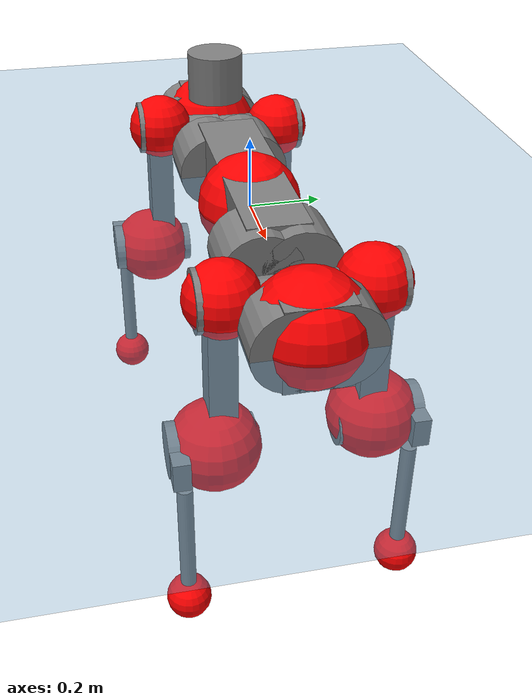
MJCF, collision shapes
<mujoco model="anymal_c">
  <compiler angle="radian" assetdir="assets" balanceinertia="true" inertiafromgeom="false"/>

  <option timestep="0.005" density="1.2" viscosity="2e-05"/>

  <size nkey="1"/>

  <visual>
    <quality shadowsize="8192"/>
    <map shadowclip="0.5"/>
  </visual>

  <default>
    <default class="/">
      <material specular="0" shininess="0.25"/>
      <geom contype="0" conaffinity="0" group="1" solref="-1000 -80"/>
      <site size="0.01 0.005 0.005" group="5"/>
      <general forcelimited="true" forcerange="-80 80" biastype="affine" gainprm="80" biasprm="0 -80 -2"/>
      <default class="anymal_c">
        <joint armature="0.01" damping="0.01" frictionloss="0.1"/>
        <default class="visual">
          <geom type="mesh" group="2"/>
          <default class="visual_zflip"/>
        </default>
        <default class="collision">
          <geom type="cylinder" group="3"/>
          <default class="foot">
            <geom size="0.03 0 0" type="sphere" condim="6" priority="1" friction="0.8 0.02 0.01" solimp="0.015 1 0.03"/>
          </default>
        </default>
      </default>
      <default class="reward_collision_sphere">
        <geom group="5" rgba="1 0 0 1"/>
      </default>
    </default>
  </default>

  <asset>
    <texture type="skybox" colorspace="auto" name="//unnamed_texture_0" builtin="gradient" rgb1="0.95 0.95 0.95" rgb2="0.95 0.95 0.95" width="100" height="600"/>
    <texture type="2d" colorspace="auto" name="texplane" builtin="checker" rgb1="0.345 0.575 0.748" rgb2="0.345 0.575 0.748" markrgb="1 1 1" width="512" height="512"/>
    <texture type="2d" colorspace="linear" name="base" file="base.png"/>
    <texture type="2d" colorspace="linear" name="top_shell" file="top_shell.png"/>
    <texture type="2d" colorspace="linear" name="bottom_shell" file="bottom_shell.png"/>
    <texture type="2d" colorspace="linear" name="remote" file="remote.png"/>
    <texture type="2d" colorspace="linear" name="hatch" file="hatch.png"/>
    <texture type="2d" colorspace="linear" name="handle" file="handle.png"/>
    <texture type="2d" colorspace="linear" name="face" file="face.png"/>
    <texture type="2d" colorspace="linear" name="battery" file="battery.png"/>
    <texture type="2d" colorspace="linear" name="lidar_cage" file="lidar_cage.png"/>
    <texture type="2d" colorspace="linear" name="depth_camera" file="depth_camera.png"/>
    <texture type="2d" colorspace="linear" name="wide_angle_camera" file="wide_angle_camera.png"/>
    <texture type="2d" colorspace="linear" name="lidar" file="lidar.png"/>
    <texture type="2d" colorspace="linear" name="drive" file="drive.png"/>
    <texture type="2d" colorspace="linear" name="hip_l" file="hip_l.png"/>
    <texture type="2d" colorspace="linear" name="shank_l" file="shank_l.png"/>
    <texture type="2d" colorspace="linear" name="foot" file="foot.png"/>
    <texture type="2d" colorspace="linear" name="thigh" file="thigh.png"/>
    <texture type="2d" colorspace="linear" name="shank_r" file="shank_r.png"/>
    <texture type="2d" colorspace="linear" name="hip_r" file="hip_r.png"/>
    <material name="MatPlane" class="/" texture="texplane" texuniform="true" texrepeat="2 2" specular="0.9" shininess="0.5"/>
    <material name="black_plastic" class="/" rgba="0.007 0.007 0.007 1"/>
    <material name="green" class="/" rgba="0.052 0.178 0.033 1"/>
    <material name="red" class="/" rgba="0.178 0.006 0.005 1"/>
    <material name="yellow" class="/" rgba="0.178 0.119 0.006 1"/>
    <material name="lwl" class="/" rgba="0.8 0.8 0.8 1"/>
    <material name="base" class="/" texture="base"/>
    <material name="top_shell" class="/" texture="top_shell"/>
    <material name="bottom_shell" class="/" texture="bottom_shell"/>
    <material name="hip_l" class="/" texture="hip_l"/>
    <material name="thigh" class="/" texture="thigh"/>
    <material name="shank_l" class="/" texture="shank_l"/>
    <material name="foot" class="/" texture="foot"/>
    <material name="hip_r" class="/" texture="hip_r"/>
    <material name="shank" class="/" texture="shank_r"/>
    <material name="hatch" class="/" texture="hatch"/>
    <material name="remote" class="/" texture="remote"/>
    <material name="handle" class="/" texture="handle"/>
    <material name="face" class="/" texture="face"/>
    <material name="depth_camera" class="/" texture="depth_camera"/>
    <material name="wide_angle_camera" class="/" texture="wide_angle_camera"/>
    <material name="battery" class="/" texture="battery"/>
    <material name="lidar_cage" class="/" texture="lidar_cage"/>
    <material name="lidar" class="/" texture="lidar"/>
    <material name="drive" class="/" texture="drive"/>
    <mesh name="base_0" class="/" file="base_0.obj"/>
    <mesh name="base_1" class="/" file="base_1.obj"/>
    <mesh name="base_2" class="/" file="base_2.obj"/>
    <mesh name="base_3" class="/" file="base_3.obj"/>
    <mesh name="base_4" class="/" file="base_4.obj"/>
    <mesh name="base_5" class="/" file="base_5.obj"/>
    <mesh name="top_shell" class="/" file="top_shell.obj"/>
    <mesh name="bottom_shell" class="/" file="bottom_shell.obj"/>
    <mesh name="remote" class="/" file="remote.obj"/>
    <mesh name="handle" class="/" file="handle.obj"/>
    <mesh name="face" class="/" file="face.obj"/>
    <mesh name="wide_angle_camera" class="/" file="wide_angle_camera.obj"/>
    <mesh name="depth_camera" class="/" file="depth_camera.obj"/>
    <mesh name="battery" class="/" file="battery.obj"/>
    <mesh name="lidar_cage" class="/" file="lidar_cage.obj"/>
    <mesh name="lidar" class="/" file="lidar.obj"/>
    <mesh name="drive" class="/" file="drive.obj"/>
    <mesh name="hip_l" class="/" file="hip_l.obj"/>
    <mesh name="thigh" class="/" file="thigh.obj"/>
    <mesh name="shank_l" class="/" file="shank_l.obj"/>
    <mesh name="foot" class="/" file="foot.obj"/>
    <mesh name="hip_r" class="/" file="hip_r.obj"/>
    <mesh name="hatch" class="/" file="hatch.obj"/>
    <mesh name="shank_r" class="/" file="shank_r.obj"/>
  </asset>

  <worldbody>
    <geom name="floor" class="/" size="100 100 0.125" type="plane" group="0" material="MatPlane"/>
    <light name="toplight_shadow" class="/" pos="0 0 5" dir="0.0990148 0.0990148 -0.990148" type="directional" ambient="0.04 0.04 0.04" diffuse="0.55 0.55 0.55" specular="0.12 0.12 0.12"/>
    <light name="toplight_fill" class="/" pos="0 0 5" dir="0.0990148 0.0990148 -0.990148" type="directional" castshadow="false" ambient="0.04 0.04 0.04" diffuse="0.3 0.3 0.3" specular="0.08 0.08 0.08"/>
    <body name="trunk" childclass="anymal_c" pos="0.000799335 -0.000754185 0.00707921" quat="1 -0.000233234 2.17973e-05 -5.35414e-05">
      <inertial pos="0.0117355 0.00981024 0.070277" quat="0.506237 0.506692 0.497902 0.488959" mass="34.3742" diaginertia="3.10979 0.122789 1.32511"/>
      <joint name="//unnamed_joint_0" type="free" armature="0" damping="0" frictionloss="0"/>
      <geom name="//unnamed_geom_1" class="visual" material="green" mesh="base_0"/>
      <geom name="//unnamed_geom_2" class="visual" material="yellow" mesh="base_1"/>
      <geom name="//unnamed_geom_3" class="visual" material="red" mesh="base_2"/>
      <geom name="//unnamed_geom_4" class="visual" material="black_plastic" mesh="base_3"/>
      <geom name="//unnamed_geom_5" class="visual" material="lwl" mesh="base_4"/>
      <geom name="//unnamed_geom_6" class="visual" material="base" mesh="base_5"/>
      <geom name="trunk_1" class="collision" size="0.353117 0.0852351 0.109588" type="box"/>
      <geom name="trunk_2" class="collision" size="0.109588 0.0882792" pos="0.310633 0.0520427 0" quat="0.707107 0 0.707107 0"/>
      <geom name="trunk_3" class="collision" size="0.109588 0.0882792" pos="-0.310633 0.0520427 0" quat="0.707107 0 0.707107 0"/>
      <geom name="trunk_4" class="collision" size="0.109588 0.0882792" pos="0.310633 -0.0520427 0" quat="0.707107 0 0.707107 0"/>
      <geom name="trunk_5" class="collision" size="0.109588 0.0882792" pos="-0.310633 -0.0520427 0" quat="0.707107 0 0.707107 0"/>
      <geom name="//unnamed_geom_12" class="visual" material="top_shell" mesh="top_shell"/>
      <geom name="//unnamed_geom_13" class="visual" material="bottom_shell" mesh="bottom_shell"/>
      <geom name="//unnamed_geom_14" class="visual" material="remote" mesh="remote"/>
      <geom name="//unnamed_geom_15" class="visual" material="handle" mesh="handle"/>
      <geom name="//unnamed_geom_16" class="visual" pos="0.591989 0 0" quat="1 0 0 0" material="face" mesh="face"/>
      <geom name="trunk_6" class="collision" size="0.0669704 0.0852351 0.109588" pos="0.67054 0 0" type="box"/>
      <geom name="//unnamed_geom_18" class="collision" size="0.109588 0.0669704" pos="0.67054 0.0520427 0" quat="0.707107 0 0.707107 0"/>
      <geom name="//unnamed_geom_19" class="collision" size="0.109588 0.0669704" pos="0.67054 -0.0520427 0" quat="0.707107 0 0.707107 0"/>
      <geom name="//unnamed_geom_20" class="visual" pos="0.65933 0 -0.0436562" quat="0.965926 0 0.258819 0" material="depth_camera" mesh="depth_camera"/>
      <geom name="//unnamed_geom_21" class="visual" pos="0.732666 0 0.0221745" material="wide_angle_camera" mesh="wide_angle_camera"/>
      <geom name="//unnamed_geom_22" class="visual_zflip" pos="-0.591989 0 0" quat="0 0 0 1" material="face" mesh="face"/>
      <geom name="trunk_7" class="collision" size="0.0669704 0.0852351 0.109588" pos="-0.67054 0 0" quat="0 0 0 1" type="box"/>
      <geom name="//unnamed_geom_24" class="collision" size="0.109588 0.0669704" pos="-0.67054 -0.0520427 0" quat="0 -0.707107 0 0.707107"/>
      <geom name="//unnamed_geom_25" class="collision" size="0.109588 0.0669704" pos="-0.67054 0.0520427 0" quat="0 -0.707107 0 0.707107"/>
      <geom name="//unnamed_geom_26" class="visual" pos="-0.65933 0 -0.0436562" quat="0 -0.258819 0 0.965926" material="depth_camera" mesh="depth_camera"/>
      <geom name="//unnamed_geom_27" class="visual_zflip" pos="-0.732666 0 0.0221745" quat="0 0 0 1" material="wide_angle_camera" mesh="wide_angle_camera"/>
      <geom name="//unnamed_geom_28" class="visual" material="battery" mesh="battery"/>
      <geom name="//unnamed_geom_29" class="visual" pos="0 0.0478626 0.0426274" quat="0.683013 -0.183013 0.183013 0.683013" material="depth_camera" mesh="depth_camera"/>
      <geom name="//unnamed_geom_30" class="visual" pos="0 -0.0478626 0.0426274" quat="0.683013 0.183013 0.183013 -0.683013" material="depth_camera" mesh="depth_camera"/>
      <geom name="//unnamed_geom_31" class="visual" pos="-0.519865 0 0.108873" quat="1 0 0 0" material="lidar_cage" mesh="lidar_cage"/>
      <geom name="trunk_8" class="collision" size="0.0852351 0.0730586" pos="-0.519865 0 0.197749"/>
      <geom name="//unnamed_geom_33" class="visual" pos="-0.519865 -0.000269013 0.210636" quat="0.707107 0 0 -0.707107" material="lidar" mesh="lidar"/>
      <geom name="//unnamed_geom_34" class="visual" pos="0.428317 0.0775827 -1.27271e-08" quat="0.258819 0.965926 0 0" material="drive" mesh="drive"/>
      <geom name="//unnamed_geom_35" class="visual" pos="0.428317 -0.0775827 1.27271e-08" quat="0.258819 -0.965926 0 0" material="drive" mesh="drive"/>
      <geom name="//unnamed_geom_36" class="visual" pos="-0.428317 0.0775827 1.27271e-08" quat="0 0 0.965926 -0.258819" material="drive" mesh="drive"/>
      <geom name="//unnamed_geom_37" class="visual" pos="-0.428317 -0.0775827 -1.27271e-08" quat="0 0 -0.965926 -0.258819" material="drive" mesh="drive"/>
      <geom name="//unnamed_geom_38" class="visual" pos="0.165671 0 0.108132" quat="1 0 0 0" material="hatch" mesh="hatch"/>
      <geom name="//unnamed_geom_39" class="reward_collision_sphere" size="0.146117"/>
      <geom name="//unnamed_geom_40" class="reward_collision_sphere" size="0.146117" pos="0.64269 0 0"/>
      <geom name="//unnamed_geom_41" class="reward_collision_sphere" size="0.146117" pos="-0.64269 0 0"/>
      <site name="imu" pos="0.414797 0.0058533 0.0199484" size="0.0121764"/>
      <camera name="track" pos="0 -1.48693 0" quat="0.707107 0.707107 0 0" mode="trackcom"/>
      <camera name="ego_camera" pos="0.64269 0 -0.0592506" quat="-0.5 -0.5 0.5 0.5"/>
      <body name="LF_HIP" pos="0.428553 0.0804078 -0.00140419" quat="0.260605 0.965445 0.00013733 -0.00141059">
        <inertial pos="0.0709742 -0.00666603 -0.0136265" quat="-0.121756 0.725653 -0.149604 0.660471" mass="5.55577" diaginertia="0.0386862 0.00107394 0.0222822"/>
        <joint name="LF_HAA" pos="0 0 0" axis="0.999244 -0.0357324 0.0153248" stiffness="0.00927728" range="-0.742435 0.381422" armature="0.00551928" damping="0.0605694" frictionloss="0.125128"/>
        <geom name="//unnamed_geom_42" class="visual" pos="0 -0.000748676 0.000122969" quat="0.258819 -0.965926 0 0" material="hip_l" mesh="hip_l"/>
        <geom name="//unnamed_geom_43" class="visual" pos="0.0855492 -0.0949076 -0.0602521" quat="0.183013 -0.683013 0.683013 0.183013" material="drive" mesh="drive"/>
        <geom name="//unnamed_geom_44" class="collision" size="0.0608822 0.0852351" pos="0.0855491 -0.00889172 -0.0102281" quat="-0.353553 -0.612372 0.612372 -0.353553"/>
        <body name="LF_THIGH" pos="0.0865139 -0.0546549 -0.0606694" quat="0.182898 -0.682502 0.683498 0.18322">
          <inertial pos="0.0403009 -0.00110978 -0.374189" quat="0.992089 -0.00634325 -0.089304 0.088005" mass="5.19516" diaginertia="0.205655 0.00689706 0.0304308"/>
          <joint name="LF_HFE" pos="0 0 0" axis="0.998279 -0.0557964 0.0180343" range="-3.11081 3.12863" armature="0.0119864" damping="0.0186095" frictionloss="0.180952"/>
          <geom name="//unnamed_geom_45" class="visual" pos="0.0136235 2.14674e-05 0" quat="0.707107 0 0 -0.707107" material="thigh" mesh="thigh"/>
          <geom name="//unnamed_geom_46" class="collision" size="0.0791468 0.0487057" pos="0.057128 0 0" quat="0.5 0.5 -0.5 -0.5"/>
          <geom name="//unnamed_geom_47" class="collision" size="0.0456616 0.0365293 0.17207" pos="0.042846 0 -0.209323" quat="0.707107 0 0 -0.707107" type="box"/>
          <geom name="//unnamed_geom_48" class="visual" pos="0.143248 0 -0.42216" quat="1 0 0 0" material="drive" mesh="drive"/>
          <geom name="//unnamed_geom_49" class="collision" size="0.0608822 0.0852351" pos="0.0432744 0 -0.42216" quat="0.707107 0 0.707107 0"/>
          <geom name="//unnamed_geom_50" class="reward_collision_sphere" size="0.0974115" pos="0.035705 0 0"/>
          <body name="LF_SHANK" pos="0.134567 0.00899397 -0.410296" quat="0.999991 0.00264261 0.00272438 -0.00199906">
            <inertial pos="0.00919081 -0.0450502 -0.117913" quat="0.993701 -0.108388 -0.00256667 -0.0283397" mass="1.1116" diaginertia="0.0639352 0.00211003 0.00861977"/>
            <joint name="LF_KFE" pos="0 0 0" axis="0.999881 0.0140904 -0.00633895" stiffness="0.0034323" range="-3.00724 3.07175" armature="0.00947513" damping="0.0510956" frictionloss="0.0835125"/>
            <geom name="//unnamed_geom_51" class="visual" pos="0.00444232 0.0236867 0" quat="0.707107 0 0 -0.707107" material="shank_l" mesh="shank_l"/>
            <geom name="LF_kfe_act" class="collision" size="0.0730586 0.0243529" pos="0.028564 0 0" quat="0.5 0.5 -0.5 -0.5"/>
            <geom name="//unnamed_geom_53" class="collision" size="0.0700133 0.0410955 0.0231352" pos="0.028564 -0.0427486 0" quat="0.5 0.5 -0.5 -0.5" type="box"/>
            <geom name="//unnamed_geom_54" class="visual" pos="0.0186369 -0.0577547 -0.500623" quat="0.382683 0 0 -0.92388" material="foot" mesh="foot"/>
            <geom name="LF_calf" class="collision" size="0.0213088 0.171995" pos="0.018638 -0.065388 -0.250311" quat="0.707107 0 0 -0.707107"/>
            <geom name="LF_foot" class="foot" size="0.037606" pos="0.018638 -0.065388 -0.467294" quat="0.707107 0 0 -0.707107"/>
            <geom name="//unnamed_geom_57" class="reward_collision_sphere" size="0.121764" pos="-0.07141 0 0"/>
            <geom name="//unnamed_geom_58" class="reward_collision_sphere" size="0.0608822" pos="0.018638 -0.065388 -0.467294"/>
            <site name="LF_foot" class="foot" pos="0.018638 -0.065388 -0.467294" quat="0.707107 0 0 -0.707107" size="0.0121764"/>
          </body>
        </body>
      </body>
      <body name="RF_HIP" pos="0.434846 -0.0781901 0.0009811" quat="0.258712 -0.965954 -0.000176364 0.000121349">
        <inertial pos="0.0715007 0.0108303 -0.0113339" quat="0.134777 0.676987 0.135692 0.710712" mass="4.72129" diaginertia="0.0337486 0.000960082 0.0217155"/>
        <joint name="RF_HAA" pos="0 0 0" axis="0.999881 0.00905182 0.0124708" stiffness="0.0117432" range="-0.286935 0.713475" armature="0.0176716" damping="0.00395984" frictionloss="0.181734"/>
        <geom name="//unnamed_geom_59" class="visual" pos="0 0.00074867 0.000122969" quat="0.258819 0.965926 0 0" material="hip_r" mesh="hip_r"/>
        <geom name="//unnamed_geom_60" class="visual" pos="0.0855491 0.0949076 -0.0602521" quat="0.183013 0.683013 0.683013 -0.183013" material="drive" mesh="drive"/>
        <geom name="//unnamed_geom_61" class="collision" size="0.0608822 0.0852351" pos="0.0855491 0.00889172 -0.0102281" quat="-0.353553 0.612372 0.612372 0.353553"/>
        <body name="RF_THIGH" pos="0.0896242 0.0434016 -0.0574248" quat="0.182965 0.682718 0.683235 -0.18333">
          <inertial pos="0.0432506 -1.35515e-05 -0.364937" quat="0.996466 -0.0237954 -0.0429594 0.0681456" mass="6.92161" diaginertia="0.199546 0.00687814 0.0310388"/>
          <joint name="RF_HFE" pos="0 0 0" axis="0.999191 0.0379982 0.0131745" stiffness="0.00874354" range="-3.37433 3.00678" armature="0.011922" damping="0.0476226" frictionloss="0.0431966"/>
          <geom name="//unnamed_geom_62" class="visual" pos="0.0136235 2.14674e-05 0" quat="0.707107 0 0 -0.707107" material="thigh" mesh="thigh"/>
          <geom name="//unnamed_geom_63" class="collision" size="0.0791468 0.0487057" pos="0.057128 0 0" quat="0.5 0.5 0.5 0.5"/>
          <geom name="//unnamed_geom_64" class="collision" size="0.0456616 0.0365293 0.17207" pos="0.042846 0 -0.209323" quat="0.707107 0 0 0.707107" type="box"/>
          <geom name="//unnamed_geom_65" class="visual" pos="0.143248 0 -0.42216" quat="1 0 0 0" material="drive" mesh="drive"/>
          <geom name="//unnamed_geom_66" class="collision" size="0.0608822 0.0852351" pos="0.0432744 0 -0.42216" quat="0.707107 0 0.707107 0"/>
          <geom name="//unnamed_geom_67" class="reward_collision_sphere" size="0.0974115" pos="0.035705 0 0"/>
          <body name="RF_SHANK" pos="0.133607 0.0106925 -0.425653" quat="1 0.000486078 0.000119587 -0.000202912">
            <inertial pos="0.00643531 0.0442879 -0.130031" quat="0.993945 0.0990593 -0.00938708 0.0466022" mass="1.05815" diaginertia="0.0687683 0.00230848 0.00806385"/>
            <joint name="RF_KFE" pos="0 0 0" axis="0.999996 0.00023089 0.00280055" range="-3.02354 3.01268" armature="0.0136528" damping="0.0118367" frictionloss="0.190371"/>
            <geom name="//unnamed_geom_68" class="visual" pos="0.00444229 -0.0236866 0" quat="0.707107 0 0 0.707107" material="shank" mesh="shank_r"/>
            <geom name="RF_kfe_act" class="collision" size="0.0730586 0.0243529" pos="0.028564 0 0" quat="0.5 0.5 0.5 0.5"/>
            <geom name="//unnamed_geom_70" class="collision" size="0.0700133 0.0410955 0.0231352" pos="0.028564 0.0427486 0" quat="0.5 0.5 0.5 0.5" type="box"/>
            <geom name="//unnamed_geom_71" class="visual" pos="0.0186391 0.0577547 -0.500623" quat="0.382683 0 0 0.92388" material="foot" mesh="foot"/>
            <geom name="RF_calf" class="collision" size="0.0213088 0.171995" pos="0.018638 0.065388 -0.250311" quat="0.707107 0 0 0.707107"/>
            <geom name="RF_foot" class="foot" size="0.0542372" pos="0.018638 0.065388 -0.467294" quat="0.707107 0 0 0.707107"/>
            <geom name="//unnamed_geom_74" class="reward_collision_sphere" size="0.121764" pos="-0.07141 0 0"/>
            <geom name="//unnamed_geom_75" class="reward_collision_sphere" size="0.0608822" pos="0.018638 0.065388 -0.467294"/>
            <site name="RF_foot" class="foot" pos="0.018638 0.065388 -0.467294" quat="0.707107 0 0 0.707107" size="0.0121764"/>
          </body>
        </body>
      </body>
      <body name="LH_HIP" pos="-0.416681 0.0735313 -0.000380893" quat="-0.000688709 0.000281125 0.96577 -0.259399">
        <inertial pos="0.0768775 0.00114227 -0.0109587" quat="0.146923 0.661708 0.146995 0.720381" mass="5.05242" diaginertia="0.0401939 0.00106839 0.0293393"/>
        <joint name="LH_HAA" pos="0 0 0" axis="0.999893 -0.0133905 0.00582252" stiffness="0.0133048" range="-0.554994 0.978161" armature="0.0187662" damping="0.0354768" frictionloss="0.113108"/>
        <geom name="//unnamed_geom_76" class="visual" pos="0 0.00074867 0.000122969" quat="-0.258819 -0.965926 0 0" material="hip_r" mesh="hip_r"/>
        <geom name="//unnamed_geom_77" class="visual" pos="0.0855491 0.0949076 -0.0602521" quat="0.183013 0.683013 0.683013 -0.183013" material="drive" mesh="drive"/>
        <geom name="//unnamed_geom_78" class="collision" size="0.0608822 0.0852351" pos="0.0855491 0.00889172 -0.0102281" quat="-0.353553 0.612372 0.612372 0.353553"/>
        <body name="LH_THIGH" pos="0.0919143 0.0665932 -0.060701" quat="0.183385 0.682845 0.68308 -0.183013">
          <inertial pos="0.0438467 -0.00859775 -0.363693" quat="0.993244 -0.00543701 -0.0761299 0.0874118" mass="5.48075" diaginertia="0.177915 0.00723175 0.0287438"/>
          <joint name="LH_HFE" pos="0 0 0" axis="0.99901 0.00474542 -0.0442298" range="-3.12263 3.12699" armature="0.015127" damping="0.0298622" frictionloss="0.10396"/>
          <geom name="//unnamed_geom_79" class="visual" pos="0.0136235 2.14674e-05 0" quat="0.707107 0 0 -0.707107" material="thigh" mesh="thigh"/>
          <geom name="//unnamed_geom_80" class="collision" size="0.0791468 0.0487057" pos="0.057128 0 0" quat="0.5 0.5 -0.5 -0.5"/>
          <geom name="//unnamed_geom_81" class="collision" size="0.0456616 0.0365293 0.17207" pos="0.042846 0 -0.209323" quat="0.707107 0 0 -0.707107" type="box"/>
          <geom name="//unnamed_geom_82" class="visual" pos="0.143248 0 -0.42216" quat="1 0 0 0" material="drive" mesh="drive"/>
          <geom name="//unnamed_geom_83" class="collision" size="0.0608822 0.0852351" pos="0.0432744 0 -0.42216" quat="0.707107 0 0.707107 0"/>
          <geom name="//unnamed_geom_84" class="reward_collision_sphere" size="0.0974115" pos="0.035705 0 0"/>
          <body name="LH_SHANK" pos="0.149872 0.000958011 -0.418926" quat="0.999998 0.00125629 0.000810387 -0.00092761">
            <inertial pos="0.00795529 0.0458232 -0.120392" quat="0.985017 0.157751 0.025218 0.0649644" mass="1.08269" diaginertia="0.0622914 0.00214308 0.009335"/>
            <joint name="LH_KFE" pos="0 0 0" axis="0.999236 -0.0304514 -0.0245103" range="-3.19514 3.13036" armature="0.0166666" damping="0.00488001" frictionloss="0.0817966"/>
            <geom name="//unnamed_geom_85" class="visual" pos="0.00444229 -0.0236866 0" quat="-0.707107 0 0 -0.707107" material="shank" mesh="shank_r"/>
            <geom name="LH_kfe_act" class="collision" size="0.0730586 0.0243529" pos="0.028564 0 0" quat="0.5 0.5 -0.5 -0.5"/>
            <geom name="//unnamed_geom_87" class="collision" size="0.0700133 0.0410955 0.0231352" pos="0.028564 0.0427486 0" quat="0.5 0.5 -0.5 -0.5" type="box"/>
            <geom name="//unnamed_geom_88" class="visual" pos="0.0186391 0.0577547 -0.500623" quat="-0.382683 0 0 -0.92388" material="foot" mesh="foot"/>
            <geom name="LH_calf" class="collision" size="0.0213088 0.171995" pos="0.018638 0.065388 -0.250311" quat="0.707107 0 0 -0.707107"/>
            <geom name="LH_foot" class="foot" size="0.0170634" pos="0.018638 0.065388 -0.467294" quat="0.707107 0 0 -0.707107"/>
            <geom name="//unnamed_geom_91" class="reward_collision_sphere" size="0.121764" pos="-0.07141 0 0"/>
            <geom name="//unnamed_geom_92" class="reward_collision_sphere" size="0.0608822" pos="0.018638 0.065388 -0.467294"/>
            <site name="LH_foot" class="foot" pos="0.018638 0.065388 -0.467294" quat="0.707107 0 0 -0.707107" size="0.0121764"/>
          </body>
        </body>
      </body>
      <body name="RH_HIP" pos="-0.427537 -0.0669846 0.00413798" quat="-0.00100966 -0.00286393 -0.966602 -0.256265">
        <inertial pos="0.0914164 -0.0129739 -0.021659" quat="-0.12621 0.703582 -0.13772 0.685621" mass="5.30637" diaginertia="0.0375306 0.00118386 0.0283785"/>
        <joint name="RH_HAA" pos="0 0 0" axis="1 0.000331211 -0.000300481" stiffness="0.0225055" range="-0.540106 0.257547" armature="0.0120526" damping="0.0409198" frictionloss="0.129184"/>
        <geom name="//unnamed_geom_93" class="visual" pos="0 -0.000748676 0.000122969" quat="-0.258819 0.965926 0 0" material="hip_l" mesh="hip_l"/>
        <geom name="//unnamed_geom_94" class="visual" pos="0.0855492 -0.0949076 -0.0602521" quat="-0.183013 0.683013 -0.683013 -0.183013" material="drive" mesh="drive"/>
        <geom name="//unnamed_geom_95" class="collision" size="0.0608822 0.0852351" pos="0.0855491 -0.00889172 -0.0102281" quat="0.353553 0.612372 -0.612372 0.353553"/>
        <body name="RH_THIGH" pos="0.0869935 -0.0493252 -0.0725029" quat="-0.183047 0.683128 -0.682868 -0.183089">
          <inertial pos="0.0367319 0.00110662 -0.364478" quat="0.993165 -0.00494741 -0.0801548 0.0846941" mass="7.32291" diaginertia="0.231718 0.00799399 0.0340199"/>
          <joint name="RH_HFE" pos="0 0 0" axis="0.999064 0.0420827 0.00997414" stiffness="0.0101398" range="-3.11805 3.18112" armature="0.0143343" damping="0.0195585" frictionloss="0.129692"/>
          <geom name="//unnamed_geom_96" class="visual" pos="0.0136235 2.14674e-05 0" quat="0.707107 0 0 -0.707107" material="thigh" mesh="thigh"/>
          <geom name="//unnamed_geom_97" class="collision" size="0.0791468 0.0487057" pos="0.057128 0 0" quat="0.5 0.5 0.5 0.5"/>
          <geom name="//unnamed_geom_98" class="collision" size="0.0456616 0.0365293 0.17207" pos="0.042846 0 -0.209323" quat="0.707107 0 0 0.707107" type="box"/>
          <geom name="//unnamed_geom_99" class="visual" pos="0.143248 0 -0.42216" quat="1 0 0 0" material="drive" mesh="drive"/>
          <geom name="//unnamed_geom_100" class="collision" size="0.0608822 0.0852351" pos="0.0432744 0 -0.42216" quat="0.707107 0 0.707107 0"/>
          <geom name="//unnamed_geom_101" class="reward_collision_sphere" size="0.0974115" pos="0.035705 0 0"/>
          <body name="RH_SHANK" pos="0.153317 0.00105171 -0.422526" quat="0.999997 0.00136515 0.00175372 -0.000761922">
            <inertial pos="0.0112671 -0.0458849 -0.118292" quat="0.995376 -0.0806733 0.0112882 -0.0508984" mass="1.08012" diaginertia="0.0652819 0.00188961 0.00822412"/>
            <joint name="RH_KFE" pos="0 0 0" axis="0.999684 0.0146277 0.0204247" range="-3.11892 3.18785" armature="0.0191351" damping="0.00135282" frictionloss="0.120649"/>
            <geom name="//unnamed_geom_102" class="visual" pos="0.00444232 0.0236867 0" quat="0.707107 0 0 -0.707107" material="shank_l" mesh="shank_l"/>
            <geom name="RH_kfe_act" class="collision" size="0.0730586 0.0243529" pos="0.028564 0 0" quat="0.5 0.5 0.5 0.5"/>
            <geom name="//unnamed_geom_104" class="collision" size="0.0700133 0.0410955 0.0231352" pos="0.028564 -0.0427486 0" quat="0.5 0.5 0.5 0.5" type="box"/>
            <geom name="//unnamed_geom_105" class="visual" pos="0.0186369 -0.0577547 -0.500623" quat="0.382683 0 0 -0.92388" material="foot" mesh="foot"/>
            <geom name="RH_calf" class="collision" size="0.0213088 0.171995" pos="0.018638 -0.065388 -0.250311" quat="0.707107 0 0 0.707107"/>
            <geom name="RH_foot" class="foot" size="0.0455999" pos="0.018638 -0.065388 -0.467294" quat="0.707107 0 0 0.707107"/>
            <geom name="//unnamed_geom_108" class="reward_collision_sphere" size="0.121764" pos="-0.07141 0 0"/>
            <geom name="//unnamed_geom_109" class="reward_collision_sphere" size="0.0608822" pos="0.018638 -0.065388 -0.467294"/>
            <site name="RH_foot" class="foot" pos="0.018638 -0.065388 -0.467294" quat="0.707107 0 0 0.707107" size="0.0121764"/>
          </body>
        </body>
      </body>
    </body>
  </worldbody>

  <contact>
    <pair class="/" geom1="floor" geom2="LF_foot" name="//unnamed_contact_0"/>
    <pair class="/" geom1="floor" geom2="RF_foot" name="//unnamed_contact_1"/>
    <pair class="/" geom1="floor" geom2="LH_foot" name="//unnamed_contact_2"/>
    <pair class="/" geom1="floor" geom2="RH_foot" name="//unnamed_contact_3"/>
  </contact>

  <actuator>
    <general name="LF_HAA" class="/" joint="LF_HAA" forcerange="-98.7503 98.7503" gainprm="65.9661" biasprm="0 -65.9661 -2.6654"/>
    <general name="LF_HFE" class="/" joint="LF_HFE" forcerange="-117.719 117.719" gainprm="65.9661" biasprm="0 -65.9661 -2.6654"/>
    <general name="LF_KFE" class="/" joint="LF_KFE" forcerange="-105.059 105.059" gainprm="65.9661" biasprm="0 -65.9661 -2.6654"/>
    <general name="RF_HAA" class="/" joint="RF_HAA" forcerange="-119.834 119.834" gainprm="65.9661" biasprm="0 -65.9661 -2.6654"/>
    <general name="RF_HFE" class="/" joint="RF_HFE" forcerange="-82.1523 82.1523" gainprm="65.9661" biasprm="0 -65.9661 -2.6654"/>
    <general name="RF_KFE" class="/" joint="RF_KFE" forcerange="-132.238 132.238" gainprm="65.9661" biasprm="0 -65.9661 -2.6654"/>
    <general name="LH_HAA" class="/" joint="LH_HAA" forcerange="-99.8987 99.8987" gainprm="65.9661" biasprm="0 -65.9661 -2.6654"/>
    <general name="LH_HFE" class="/" joint="LH_HFE" forcerange="-133.066 133.066" gainprm="65.9661" biasprm="0 -65.9661 -2.6654"/>
    <general name="LH_KFE" class="/" joint="LH_KFE" forcerange="-103.948 103.948" gainprm="65.9661" biasprm="0 -65.9661 -2.6654"/>
    <general name="RH_HAA" class="/" joint="RH_HAA" forcerange="-106.96 106.96" gainprm="65.9661" biasprm="0 -65.9661 -2.6654"/>
    <general name="RH_HFE" class="/" joint="RH_HFE" forcerange="-138.151 138.151" gainprm="65.9661" biasprm="0 -65.9661 -2.6654"/>
    <general name="RH_KFE" class="/" joint="RH_KFE" forcerange="-64.9578 64.9578" gainprm="65.9661" biasprm="0 -65.9661 -2.6654"/>
  </actuator>

  <sensor>
    <gyro site="imu" name="imu_angular_velocity"/>
    <velocimeter site="imu" name="imu_linear_velocity"/>
    <framelinvel objtype="site" objname="LF_foot" name="LF_foot_global_linear_velocity"/>
    <framelinvel objtype="site" objname="RF_foot" name="RF_foot_global_linear_velocity"/>
    <framelinvel objtype="site" objname="LH_foot" name="LH_foot_global_linear_velocity"/>
    <framelinvel objtype="site" objname="RH_foot" name="RH_foot_global_linear_velocity"/>
  </sensor>

  <keyframe>
    <key name="home" qpos="0 0 0.55 1 0 0 0 0 0.4 -0.8 0 -0.4 0.8 0 -0.4 0.8 0 0.4 -0.8"/>
  </keyframe>
</mujoco>
